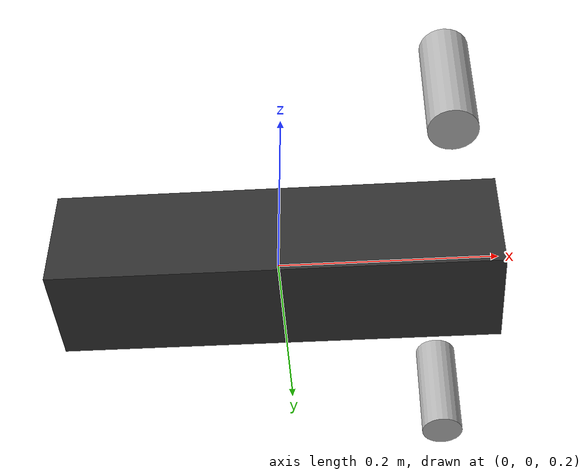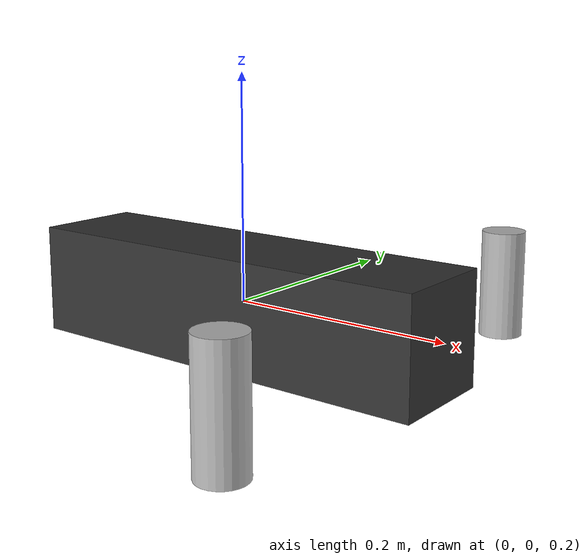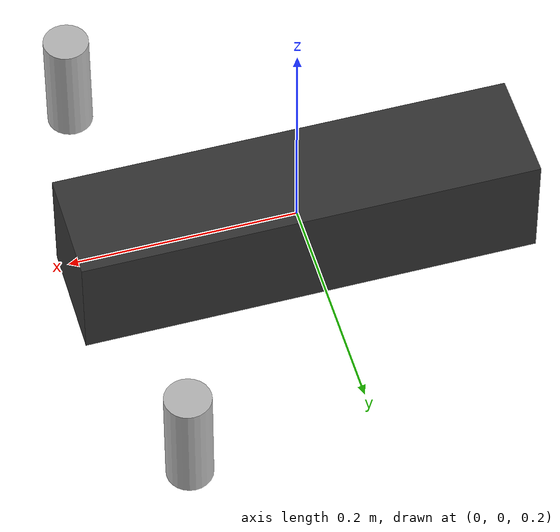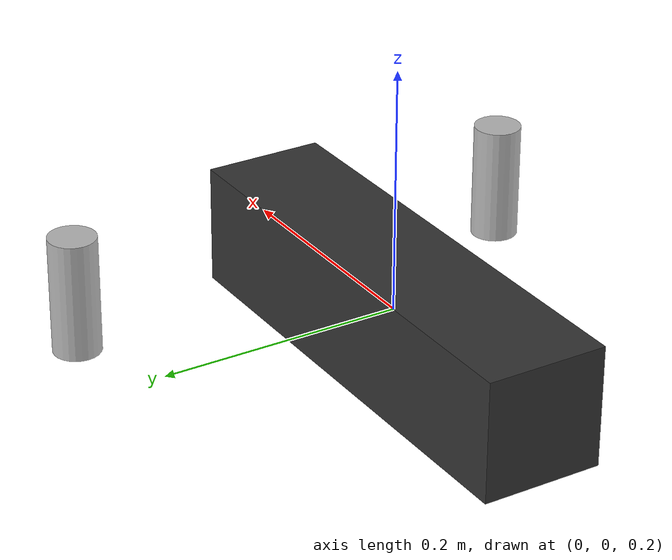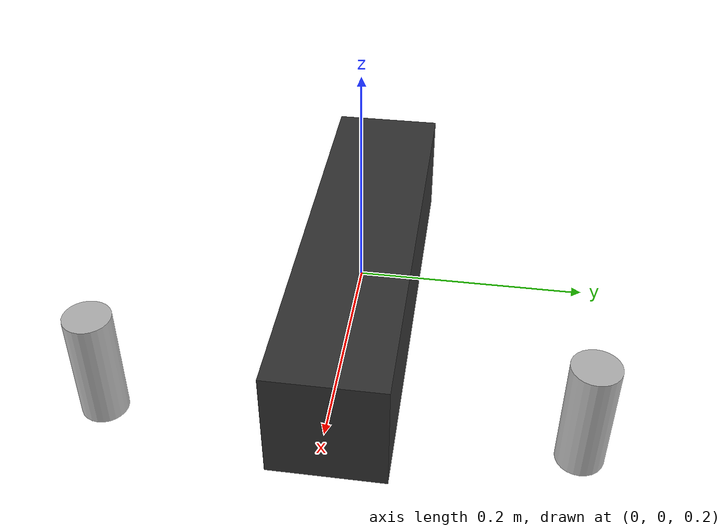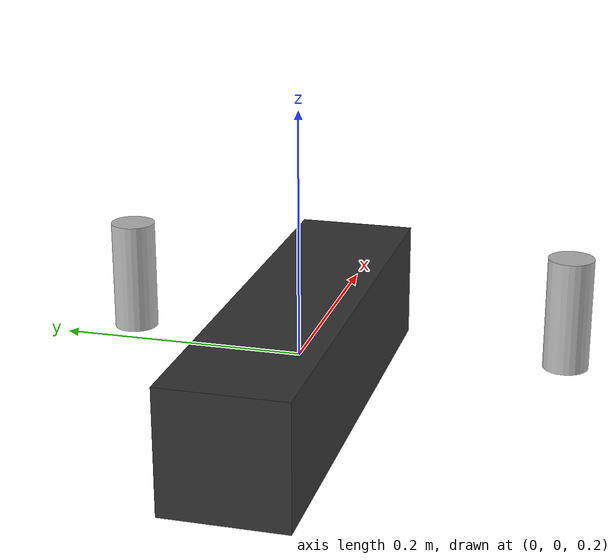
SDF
<?xml version="1.0" ?>
<sdf version="1.9">
  <model name="vtol_tricopter">
    <pose>0 0 0.2 0 0 0</pose>

    <link name="base_link">
      <inertial>
        <mass>1.5</mass>
        <inertia>
          <ixx>0.016</ixx><iyy>0.016</iyy><izz>0.032</izz>
        </inertia>
      </inertial>
      <visual name="visual">
        <geometry><box><size>0.4 0.1 0.1</size></box></geometry>
        <material><ambient>0.2 0.2 0.2 1</ambient></material>
      </visual>
    </link>

    <link name="tilt_1">
      <pose>0.15 0.2 0 0 0 0</pose>
      <visual name="v1"><geometry><cylinder><radius>0.02</radius><length>0.1</length></cylinder></geometry></visual>
    </link>
    <joint name="tilt_1_joint" type="revolute">
      <parent>base_link</parent>
      <child>tilt_1</child>
      <axis>
        <xyz>0 1 0</xyz> <limit><lower>-1.57</lower><upper>1.57</upper></limit>
      </axis>
    </joint>

    <link name="tilt_2">
      <pose>0.15 -0.2 0 0 0 0</pose>
      <visual name="v2"><geometry><cylinder><radius>0.02</radius><length>0.1</length></cylinder></geometry></visual>
    </link>
    <joint name="tilt_2_joint" type="revolute">
      <parent>base_link</parent>
      <child>tilt_2</child>
      <axis>
        <xyz>0 1 0</xyz>
        <limit><lower>-1.57</lower><upper>1.57</upper></limit>
      </axis>
    </joint>

    <plugin name="ArduPilotPlugin" filename="ArduPilotPlugin">
      <fdm_addr>127.0.0.1</fdm_addr>
      <fdm_port_in>9002</fdm_port_in>
      <lock_step>1</lock_step>
      <modelXYZToAirplaneXForwardZDown degrees="true">0 0 0 180 0 0</modelXYZToAirplaneXForwardZDown>
      <gazeboXYZToNED degrees="true">0 0 0 180 0 90</gazeboXYZToNED>

      <control channel="0"><jointName>tilt_1_joint</jointName><type>VELOCITY</type></control>
      <control channel="1"><jointName>tilt_2_joint</jointName><type>VELOCITY</type></control>
      <control channel="4"><jointName>tilt_1_joint</jointName><type>POSITION</type></control>
      <control channel="5"><jointName>tilt_2_joint</jointName><type>POSITION</type></control>
    </plugin>

    <link name="down_cam_link">
      <pose>0 0 -0.1 0 1.5708 0</pose>
      <sensor name="down_cam" type="camera">
        <camera>
          <horizontal_fov>1.047</horizontal_fov>
          <image><width>1280</width><height>720</height></image>
        </camera>
        <plugin name="GstCameraPlugin" filename="GstCameraPlugin">
          <udp_host>127.0.0.1</udp_host>
          <udp_port>5601</udp_port>
        </plugin>
      </sensor>
    </link>
    <joint name="down_cam_joint" type="fixed">
      <parent>base_link</parent>
      <child>down_cam_link</child>
    </joint>
  </model>
</sdf>
